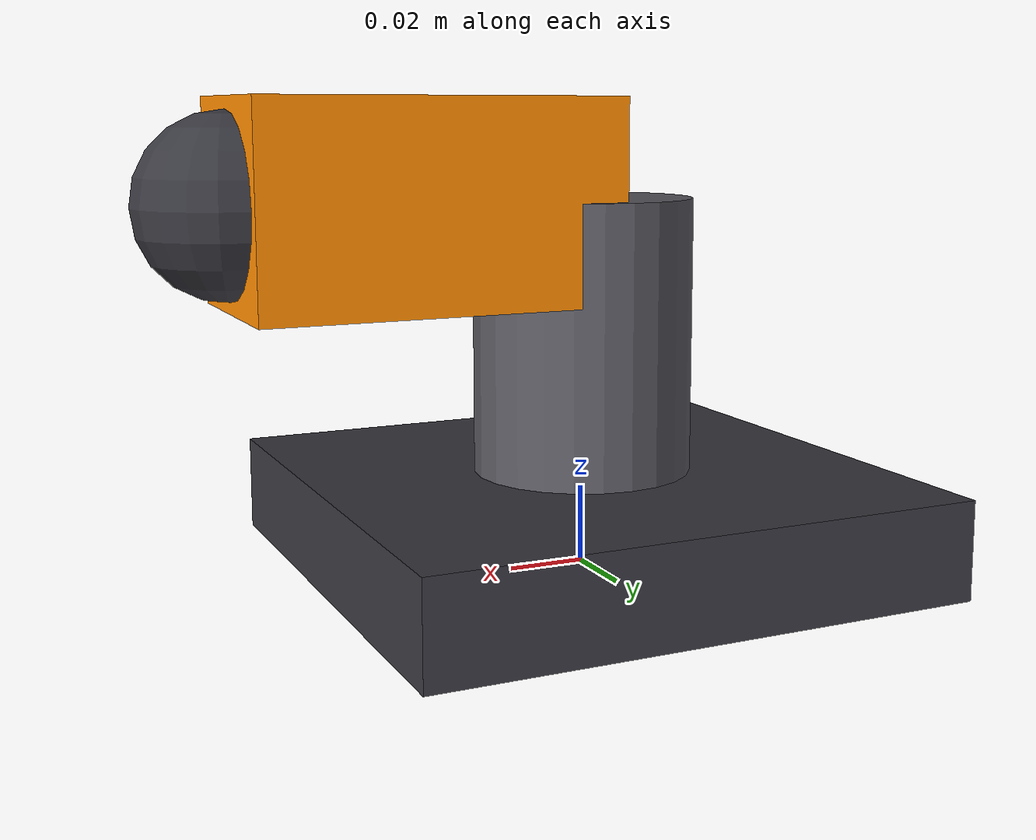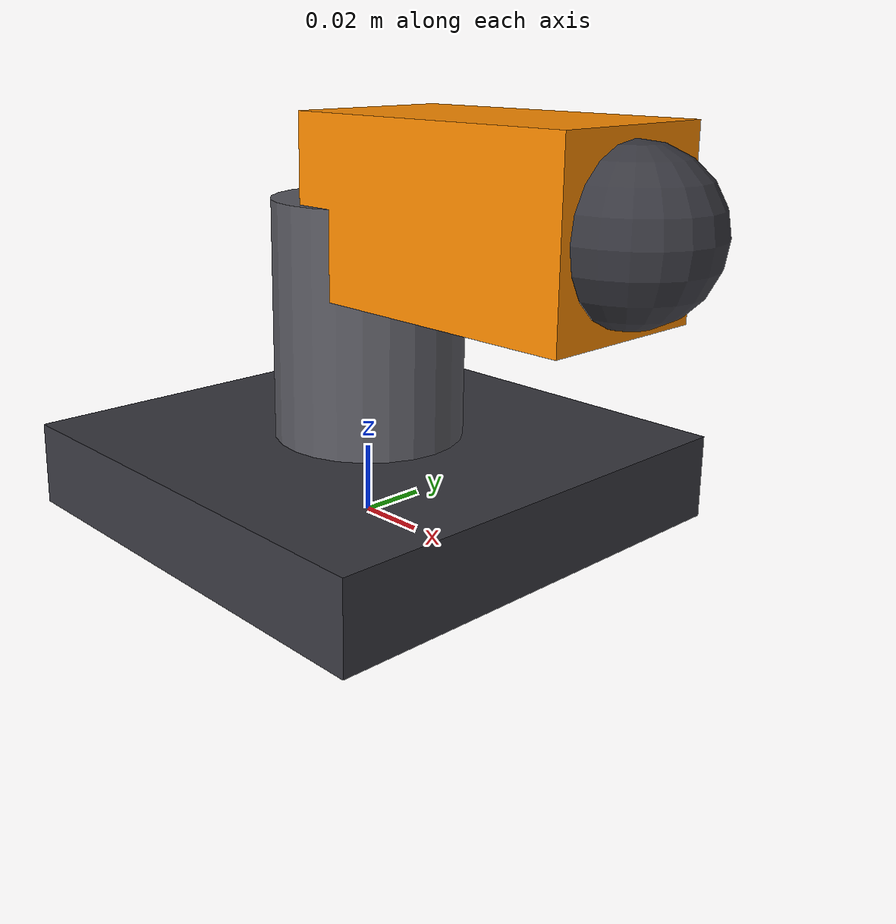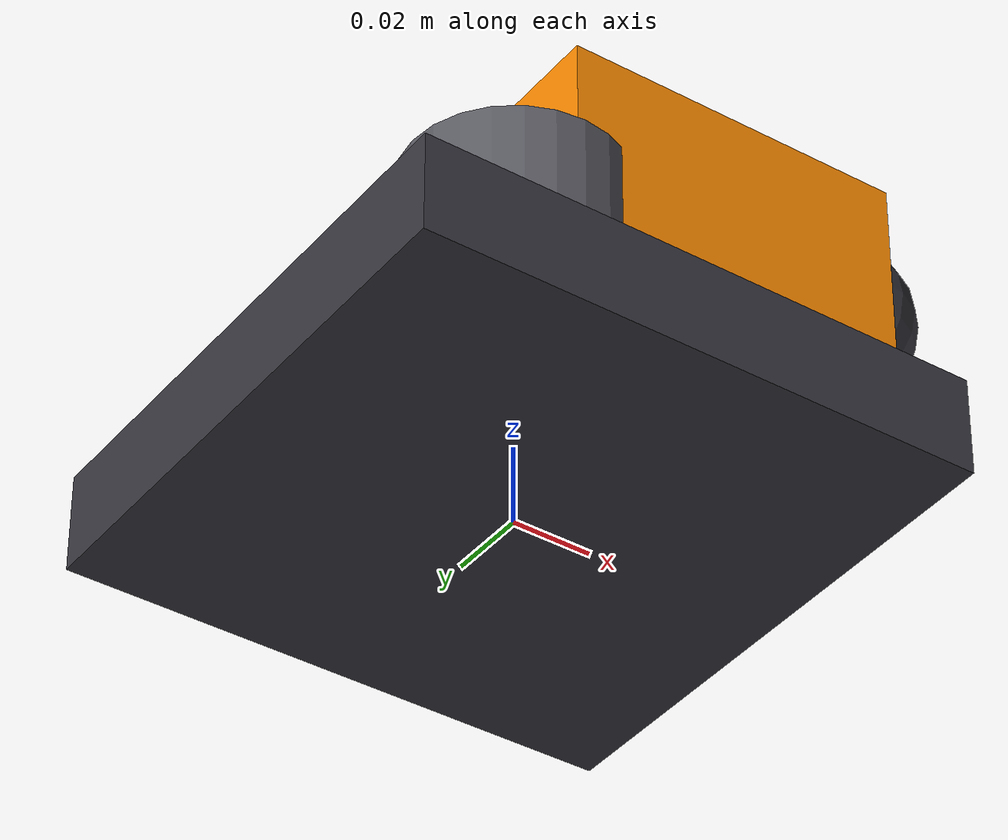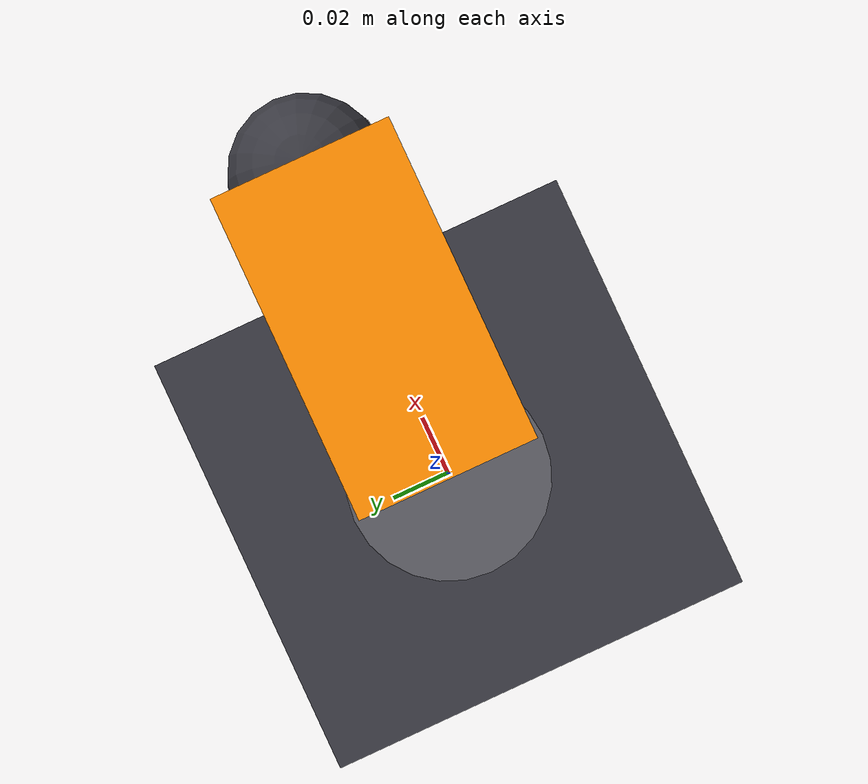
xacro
<?xml version="1.0"?>
<robot name="ptu" xmlns:xacro="http://www.ros.org/wiki/xacro">

    <xacro:property name="INERTIA_MULTIPLY" value="1.0"/>

    <xacro:macro name="box_inertia" params="m l w h xyz rpy">
        <inertial>
            <origin xyz="${xyz}" rpy="${rpy}"/>
            <mass value="${m}"/>
            <inertia
                ixx="${INERTIA_MULTIPLY * (m/12.0) * (w*w + h*h)}" ixy="0.0" ixz="0.0"
                iyy="${INERTIA_MULTIPLY * (m/12.0) * (l*l + h*h)}" iyz="0.0"
                izz="${INERTIA_MULTIPLY * (m/12.0) * (l*l + w*w)}"/>
        </inertial>
    </xacro:macro>

    <xacro:macro name="sphere_inertia" params="m r xyz rpy">
        <inertial>
            <origin xyz="${xyz}" rpy="${rpy}"/>
            <mass value="${m}"/>
            <inertia
                ixx="${INERTIA_MULTIPLY * (2.0/5.0) * m * r*r}" ixy="0.0" ixz="0.0"
                iyy="${INERTIA_MULTIPLY * (2.0/5.0) * m * r*r}" iyz="0.0"
                izz="${INERTIA_MULTIPLY * (2.0/5.0) * m * r*r}"/>
        </inertial>
    </xacro:macro>

    <xacro:macro name="cylinder_inertia" params="m r h xyz rpy">
        <inertial>
            <origin xyz="${xyz}" rpy="${rpy}"/>
            <mass value="${m}"/>
            <inertia
                ixx="${INERTIA_MULTIPLY * (m/12.0) * (3.0*r*r + h*h)}" ixy="0.0" ixz="0.0"
                iyy="${INERTIA_MULTIPLY * (m/12.0) * (3.0*r*r + h*h)}" iyz="0.0"
                izz="${INERTIA_MULTIPLY * (m/2.0) * r*r}"/>
        </inertial>
    </xacro:macro>

    <material name="charcoal">
        <color rgba="0.22 0.22 0.25 1.0"/>
    </material>
    <material name="dark_grey">
        <color rgba="0.35 0.35 0.38 1.0"/>
    </material>
    <material name="amber">
        <color rgba="1.0 0.55 0.0 1.0"/>
    </material>

    <link name="base_plate">
        <inertial>
            <origin xyz="0.0 0.0 0.0125" rpy="0.0 0.0 0.0"/>
            <mass value="0.8"/>
            <inertia ixx="0.00134833" ixy="0" ixz="0" iyy="0.00134833" iyz="0" izz="0.00261333"/>
        </inertial>
        <visual>
            <origin xyz="0.0 0.0 0.0125" rpy="0.0 0.0 0.0"/>
            <geometry>
                <box size="0.14 0.14 0.025"/>
            </geometry>
            <material name="charcoal"/>
        </visual>
        <collision>
            <origin xyz="0.0 0.0 0.0125" rpy="0.0 0.0 0.0"/>
            <geometry>
                <box size="0.14 0.14 0.025"/>
            </geometry>
        </collision>
    </link>

    <link name="pan_link">
        <inertial>
            <origin xyz="0.0 0.0 0.035" rpy="0.0 0.0 0.0"/>
            <mass value="0.18"/>
            <inertia ixx="0.00010878" ixy="0" ixz="0" iyy="0.00010878" iyz="0" izz="7.056e-05"/>
        </inertial>
        <visual>
            <origin xyz="0.0 0.0 0.035" rpy="0.0 0.0 0.0"/>
            <geometry>
                <cylinder radius="0.028" length="0.07"/>
            </geometry>
            <material name="dark_grey"/>
        </visual>
        <collision>
            <origin xyz="0.0 0.0 0.035" rpy="0.0 0.0 0.0"/>
            <geometry>
                <cylinder radius="0.028" length="0.07"/>
            </geometry>
        </collision>
    </link>

    <link name="tilt_link">
        <inertial>
            <origin xyz="0.045 0.0 0.0" rpy="0.0 0.0 0.0"/>
            <mass value="0.12"/>
            <inertia ixx="5e-05" ixy="0" ixz="0" iyy="0.000106" iyz="0" izz="0.000106"/>
        </inertial>
        <visual>
            <origin xyz="0.045 0.0 0.0" rpy="0.0 0.0 0.0"/>
            <geometry>
                <box size="0.09 0.05 0.05"/>
            </geometry>
            <material name="amber"/>
        </visual>
        <collision>
            <origin xyz="0.045 0.0 0.0" rpy="0.0 0.0 0.0"/>
            <geometry>
                <box size="0.09 0.05 0.05"/>
            </geometry>
        </collision>
    </link>

    <link name="lens">
        <inertial>
            <origin xyz="0.0 0.0 0.0" rpy="0.0 0.0 0.0"/>
            <mass value="0.03"/>
            <inertia ixx="5.808e-06" ixy="0" ixz="0" iyy="5.808e-06" iyz="0" izz="5.808e-06"/>
        </inertial>
        <visual>
            <origin xyz="0.0 0.0 0.0" rpy="0.0 0.0 0.0"/>
            <geometry>
                <sphere radius="0.022"/>
            </geometry>
            <material name="charcoal"/>
        </visual>
        <collision>
            <origin xyz="0.0 0.0 0.0" rpy="0.0 0.0 0.0"/>
            <geometry>
                <sphere radius="0.022"/>
            </geometry>
        </collision>
    </link>

    <joint name="pan_joint" type="revolute">
        <origin xyz="0.0 0.0 0.025" rpy="0.0 0.0 0.0"/>
        <parent link="base_plate"/>
        <child link="pan_link"/>
        <axis xyz="0.0 0.0 1.0"/>
        <limit lower="-3.141592653589793" upper="3.141592653589793" effort="10.0" velocity="1.5"/>
        <dynamics damping="0.3" friction="0.02"/>
    </joint>

    <joint name="tilt_joint" type="revolute">
        <origin xyz="0.0 0.0 0.07" rpy="0.0 0.0 0.0"/>
        <parent link="pan_link"/>
        <child link="tilt_link"/>
        <axis xyz="0.0 1.0 0.0"/>
        <limit lower="-1.5707963267948966" upper="0.0" effort="6.0" velocity="1.5"/>
        <dynamics damping="0.2" friction="0.01"/>
    </joint>

    <joint name="lens_joint" type="fixed">
        <origin xyz="0.09 0.0 0.0" rpy="0.0 0.0 0.0"/>
        <parent link="tilt_link"/>
        <child link="lens"/>
    </joint>

</robot>
